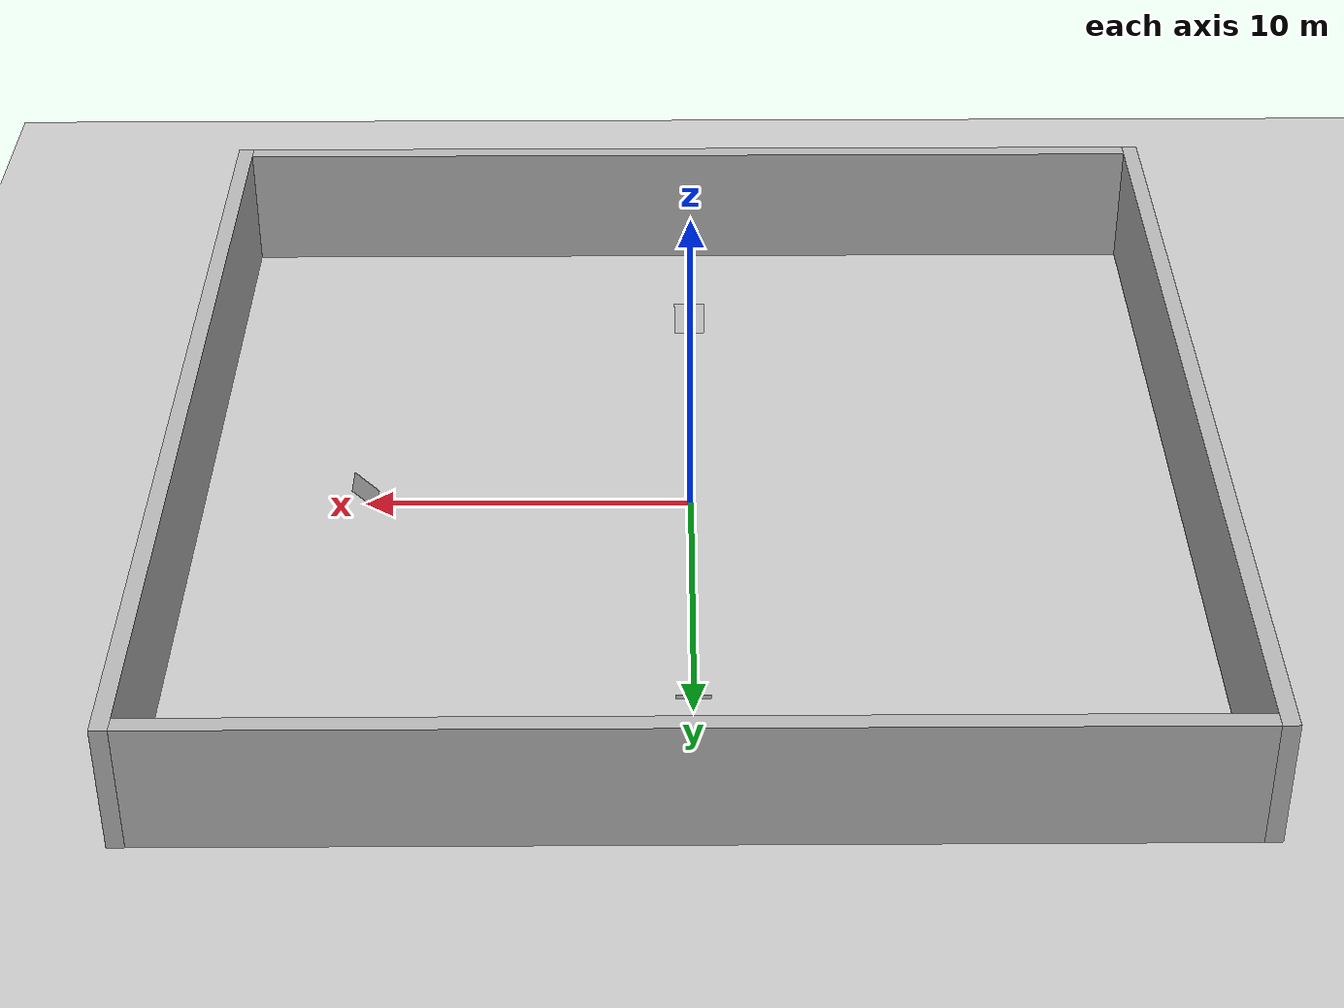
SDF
<sdf version="1.6">
 <world name="default">
  <model name="ground_plane">
   <static>1</static>
   <link name="link">
    <collision name="collision">
     <geometry><plane><normal>0 0 1</normal><size>100 100</size></plane></geometry>
     <surface><friction><ode><mu>100</mu><mu2>50</mu2></ode></friction></surface>
    </collision>
    <visual name="visual">
     <cast_shadows>0</cast_shadows>
     <geometry><plane><normal>0 0 1</normal><size>100 100</size></plane></geometry>
     <material>
      <script><uri>file://media/materials/scripts/gazebo.material</uri><name>Gazebo/Grey</name></script>
     </material>
    </visual>
   </link>
  </model>
  <light name="sun" type="directional">
   <pose>0 0 10 0 -0 0</pose>
   <diffuse>0.8 0.8 0.8 1</diffuse>
   <specular>0.1 0.1 0.1 1</specular>
   <attenuation>
    <range>1000</range>
    <constant>0.9</constant>
    <linear>0.01</linear>
    <quadratic>0.001</quadratic>
   </attenuation>
   <direction>-0.5 0.5 -1</direction>
  </light>
  <model name="north_wall">
   <pose>15.25 0 2 0 -0 0</pose>
   <static>1</static>
   <link name="body">
    <collision name="colN"><geometry><box><size>0.5 31 4</size></box></geometry></collision>
    <visual name="visual"><geometry><box><size>0.5 31 4</size></box></geometry></visual>
   </link>
  </model>
  <model name="south_wall">
   <pose>-15.25 0 2 0 -0 0</pose>
   <static>1</static>
   <link name="body">
    <collision name="colS"><geometry><box><size>0.5 31 4</size></box></geometry></collision>
    <visual name="visual"><geometry><box><size>0.5 31 4</size></box></geometry></visual>
   </link>
  </model>
  <model name="west_wall">
   <pose>0 15.25 2 0 -0 0</pose>
   <static>1</static>
   <link name="body">
    <collision name="colW"><geometry><box><size>30 0.5 4</size></box></geometry></collision>
    <visual name="visual"><geometry><box><size>30 0.5 4</size></box></geometry></visual>
   </link>
  </model>
  <model name="east_wall">
   <pose>0 -15.25 2 0 -0 0</pose>
   <static>1</static>
   <link name="body">
    <collision name="colE"><geometry><box><size>30 0.5 4</size></box></geometry></collision>
    <visual name="visual"><geometry><box><size>30 0.5 4</size></box></geometry></visual>
   </link>
  </model>
  <gravity>0 0 -9.8</gravity>
  <magnetic_field>6e-06 2.3e-05 -4.2e-05</magnetic_field>
  <atmosphere type="adiabatic"/>
  <physics name="default_physics" default="0" type="ode">
   <max_step_size>0.001</max_step_size>
   <real_time_factor>1</real_time_factor>
   <real_time_update_rate>1000</real_time_update_rate>
  </physics>
  <scene><ambient>0.4 0.4 0.4 1</ambient><background>0.7 0.7 0.7 1</background><shadows>1</shadows></scene>
  <spherical_coordinates>
   <surface_model>EARTH_WGS84</surface_model>
   <latitude_deg>0</latitude_deg>
   <longitude_deg>0</longitude_deg>
   <elevation>0</elevation>
   <heading_deg>0</heading_deg>
  </spherical_coordinates>
  <model name="ARtag_26">
   <static>1</static>
   <link name="link">
    <collision name="collision">
     <geometry><mesh><scale>1 1 1</scale><uri>model://ARtag_26/meshes/Tag26.dae</uri></mesh></geometry>
    </collision>
    <visual name="visual">
     <geometry><mesh><scale>1 1 1</scale><uri>model://ARtag_26/meshes/Tag26.dae</uri></mesh></geometry>
    </visual>
   </link>
   <pose>0 10 0.5 0.785 -0 0</pose>
  </model>
  <model name="ARtag_582_0">
   <static>1</static>
   <link name="link">
    <collision name="collision">
     <geometry><mesh><scale>1 1 1</scale><uri>model://ARtag_582/meshes/Tag582.dae</uri></mesh></geometry>
    </collision>
    <visual name="visual">
     <geometry><mesh><scale>1 1 1</scale><uri>model://ARtag_582/meshes/Tag582.dae</uri></mesh></geometry>
    </visual>
   </link>
   <pose>10 0 0.5 0 -0.785 0</pose>
  </model>
  <model name="ARtag_701_0">
   <static>1</static>
   <link name="link">
    <collision name="collision">
     <geometry><mesh><scale>1 1 1</scale><uri>model://ARtag_701/meshes/Tag701.dae</uri></mesh></geometry>
    </collision>
    <visual name="visual">
     <geometry><mesh><scale>1 1 1</scale><uri>model://ARtag_701/meshes/Tag701.dae</uri></mesh></geometry>
    </visual>
   </link>
   <pose>0 -10 0.5 -0.785 0 0</pose>
  </model>
 </world>
</sdf>
